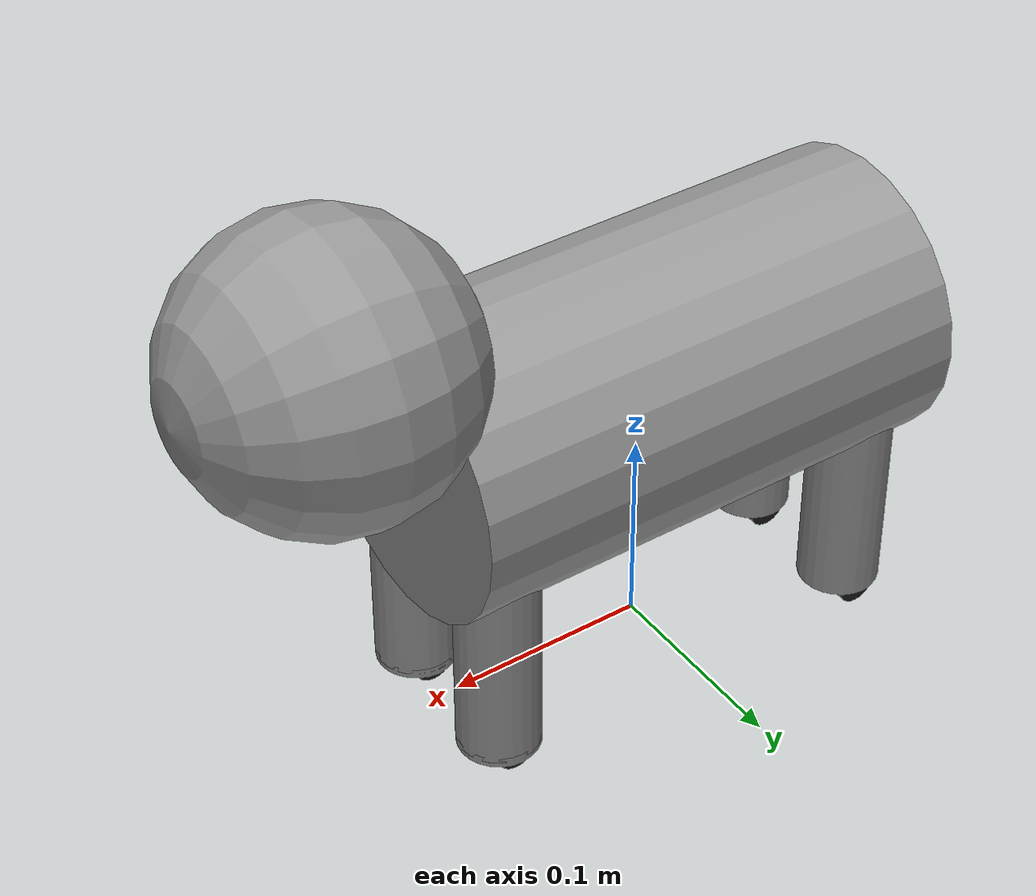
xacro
<?xml version="1.0"?>

<robot name="mouse" xmlns:xacro="http://www.ros.org/wiki/xacro">

	<xacro:property name="PI" value="3.1415926535897931"/>

	<xacro:property name="bodyLength" value="0.25"/>
	<xacro:property name="bodyRadius" value="0.07"/>
	<xacro:property name="bodyMass" value="50"/>

	<xacro:property name="headRadius" value="0.07"/>
	<xacro:property name="headMass" value="10"/>

	<xacro:property name="legLength" value="0.12"/>
	<xacro:property name="legRadius" value="0.02"/>
	<xacro:property name="legMass" value="10"/>

	<xacro:property name="spinnerLength" value="0.005"/>
	<xacro:property name="spinnerRadius" value="0.02"/>
	<xacro:property name="spinnerMass" value="1"/>

	<xacro:property name="wheelLength" value="0.03"/>
	<xacro:property name="wheelRadius" value="0.01"/>
	<xacro:property name="wheelMass" value="10"/>

	<xacro:include filename="$(find mouse_description)/urdf/mouse.gazebo" />
	<xacro:include filename="$(find mouse_description)/urdf/materials.xacro" />
	<xacro:include filename="$(find mouse_description)/urdf/macros.xacro" />

	<link name="base_link">
	</link>

	<link name="body">
		<collision>
			<geometry>
				<cylinder length="${bodyLength}" radius="${bodyRadius}" />
			</geometry>
		</collision>
		<visual>
			<geometry>
				<cylinder length="${bodyLength}" radius="${bodyRadius}" />
			</geometry>
			<material name="grey" />
		</visual>
		<inertial>
			<mass value="${bodyMass}"/>
			<cylinder_inertia m="${bodyMass}" r="${bodyRadius}" h="${bodyLength}"/>
		</inertial>
	</link>

	<joint name="base_body" type="fixed">
		<parent link="base_link"/>
		<child link="body"/>
		<origin rpy="0 ${PI/2} 0" xyz="0 0 ${legLength + spinnerLength + wheelLength/2}"/>
	</joint>

	<link name="head">
		<visual>
			<geometry>
				<sphere radius="${headRadius}" />
			</geometry>
			<material name="grey" />
		</visual>
		<collision>
			<geometry>
				<sphere radius="${headRadius}" />
			</geometry>
		</collision>
		<inertial>
			<mass value="${headMass}"/>
			<sphere_inertia m="${headMass}" r="${headRadius}" />
		</inertial>
	</link>

	<joint name="body_head" type="fixed">
		<parent link="body"/>
		<child link="head"/>
		<origin rpy="0 0 0" xyz="-${bodyRadius} 0 ${bodyLength/2 + headRadius/2}"/>
	</joint>

	<leg lr="L" fb="F" tY="1" tX="1" />
	<leg lr="R" fb="F" tY="-1" tX="1" />
	<leg lr="L" fb="B" tY="1" tX="-1" />
	<leg lr="R" fb="B" tY="-1" tX="-1" />

	<spinner lr="L" fb="F" tY="1" tX="1" />
	<spinner lr="R" fb="F" tY="1" tX="1" />

	<wheel lr="L" fb="F"/>
	<wheel lr="R" fb="F"/>
	<wheelB lr="L" fb="B"/>
	<wheelB lr="R" fb="B"/>

</robot>

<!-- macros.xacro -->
<robot xmlns:xacro="http://www.ros.org/wiki/xacro">

  <!--
    m = mass
    r = radius
    h = height
  -->
  <xacro:macro name="cylinder_inertia" params="m r h">
    <inertia  ixx="${m*(3*r*r+h*h)/12}" ixy = "0" ixz = "0"
              iyy="${m*(3*r*r+h*h)/12}" iyz = "0"
              izz="${m*r*r/2}"
    />
  </xacro:macro>

  <!--
    m = mass
    x = x value
    y = y value
    z = z value
  -->
  <xacro:macro name="box_inertia" params="m x y z">
    <inertia  ixx="${m*(y*y+z*z)/12}" ixy = "0" ixz = "0"
              iyy="${m*(x*x+z*z)/12}" iyz = "0"
              izz="${m*(x*x+z*z)/12}"
    />
  </xacro:macro>

  <!--
    m = mass
    r = radius
  -->
  <xacro:macro name="sphere_inertia" params="m r">
    <inertia  ixx="${2*m*r*r/5}" ixy = "0" ixz = "0"
              iyy="${2*m*r*r/5}" iyz = "0"
              izz="${2*m*r*r/5}"
    />
  </xacro:macro>

  <!--
    lr = left/right ("L" | "R")
    fb = front/back ("F" | "B")
    tY = translation in Y ("1" | "-1")
    tX = translation in X ("1" | "-1")
  -->
  <xacro:macro name="leg" params="lr fb tY tX">

    <link name="leg_${lr}${fb}">
      <collision>
        <geometry>
          <cylinder length="${legLength}" radius="${legRadius}" />
        </geometry>
      </collision>

      <visual>
        <geometry>
          <cylinder length="${legLength}" radius="${legRadius}" />
        </geometry>
        <material name="grey" />
      </visual>

      <inertial>
        <mass value="${legMass}"/>
        <cylinder_inertia m="${legMass}" r="${legRadius}" h="${legLength}"/>
      </inertial>
    </link>

    <gazebo reference="leg_${lr}${fb}">
      <material>Gazebo/Grey</material>
    </gazebo>

    <joint name="body_leg_${lr}${fb}_joint" type="fixed">
      <parent link="base_link"/>
      <child link="leg_${lr}${fb}"/>
      <origin rpy="0 0 0" xyz="${tX*2*bodyLength/5} ${tY*bodyRadius/2} ${legLength/2}"/>
    </joint>
  </xacro:macro>

  <xacro:macro name="spinner" params="lr fb tY tX">

    <link name="spinner_${lr}${fb}">
      <collision>
        <geometry>
          <cylinder length="${spinnerLength}" radius="${spinnerRadius}" />
        </geometry>
      </collision>

      <visual>
        <geometry>
          <cylinder length="${spinnerLength}" radius="${spinnerRadius}" />
        </geometry>
        <material name="grey" />
      </visual>

      <inertial>
        <mass value="${spinnerMass}"/>
        <cylinder_inertia m="${spinnerMass}" r="${spinnerRadius}" h="${spinnerLength}"/>
      </inertial>
    </link>

    <gazebo reference="leg_${lr}${fb}">
      <material>Gazebo/Grey</material>
    </gazebo>

    <joint name="leg_${lr}${fb}_spinner_joint" type="revolute">
      <parent link="leg_${lr}${fb}"/>
      <child link="spinner_${lr}${fb}"/>
      <limit lower="-0.7" upper="0.7" effort="1000" velocity="1000"/>
      <origin rpy="0 0 0" xyz="0 0 -${legLength/2}"/>
      <axis xyz="0 0 1"/>
    </joint>

    <transmission name="trans_spin_${lr}${fb}">
      <type>transmission_interface/SimpleTransmission</type>
      <joint name="leg_${lr}${fb}_spinner_joint">
        <hardwareInterface>hardware_interface/EffortJointInterface</hardwareInterface>
      </joint>
      <actuator name="motor_spin_${lr}${fb}">
        <hardwareInterface>hardware_interface/EffortJointInterface</hardwareInterface>
        <mechanicalReduction>1</mechanicalReduction>
      </actuator>
    </transmission>

  </xacro:macro>

  <!--
    lr = left/right ("L" | " R")
    fb = front/back ("F" | "B")
    mr = mirror (Boolean | "")
    mlr = mirror left/right ("L" | "R")
    mfb = mirror front/back ("F" | "B")
  -->
  <xacro:macro name="wheel" params="lr fb">

    <link name="wheel_${lr}${fb}">
      <collision>
        <geometry>
          <cylinder length="${wheelLength}" radius="${wheelRadius}" />
        </geometry>
      </collision>

      <visual>
        <geometry>
          <cylinder length="${wheelLength}" radius="${wheelRadius}" />
        </geometry>
        <material name="black" />
      </visual>

      <inertial>
        <mass value="${wheelMass}"/>
        <cylinder_inertia m="${wheelMass}" r="${wheelRadius}" h="${wheelLength}"/>
      </inertial>
    </link>

    <gazebo reference="wheel_${lr}${fb}">
      <material>Gazebo/Black</material>
    </gazebo>

    <joint name="leg_wheel_${lr}${fb}_joint" type="continuous">
      <parent link="spinner_${lr}${fb}"/>
      <child link="wheel_${lr}${fb}"/>
      <origin rpy="${PI/2} ${PI/2} 0" xyz="0 0 0"/>
      <axis xyz="0 0 -1"/>
      <joint_properties damping="0.0" friction="0.0"/>
    </joint>

  </xacro:macro>

  <xacro:macro name="wheelB" params="lr fb">

    <link name="wheel_${lr}${fb}">
      <collision>
        <geometry>
          <cylinder length="${wheelLength}" radius="${wheelRadius}" />
        </geometry>
      </collision>

      <visual>
        <geometry>
          <cylinder length="${wheelLength}" radius="${wheelRadius}" />
        </geometry>
        <material name="black" />
      </visual>

      <inertial>
        <mass value="${wheelMass}"/>
        <cylinder_inertia m="${wheelMass}" r="${wheelRadius}" h="${wheelLength}"/>
      </inertial>
    </link>

    <gazebo reference="wheel_${lr}${fb}">
      <material>Gazebo/Black</material>
    </gazebo>

    <joint name="leg_wheel_${lr}${fb}_joint" type="continuous">
      <parent link="leg_${lr}${fb}"/>
      <child link="wheel_${lr}${fb}"/>
      <origin rpy="${PI/2} ${PI/2} 0" xyz="0 0 -${legLength/2}"/>
      <axis xyz="0 0 -1"/>
      <joint_properties damping="0.0" friction="0.0"/>
    </joint>

    <transmission name="trans_${lr}${fb}">
      <type>transmission_interface/SimpleTransmission</type>
      <joint name="leg_wheel_${lr}${fb}_joint">
        <hardwareInterface>hardware_interface/EffortJointInterface</hardwareInterface>
      </joint>
      <actuator name="motor_${lr}${fb}">
        <hardwareInterface>hardware_interface/EffortJointInterface</hardwareInterface>
        <mechanicalReduction>1</mechanicalReduction>
      </actuator>
    </transmission>
  </xacro:macro>

</robot>
